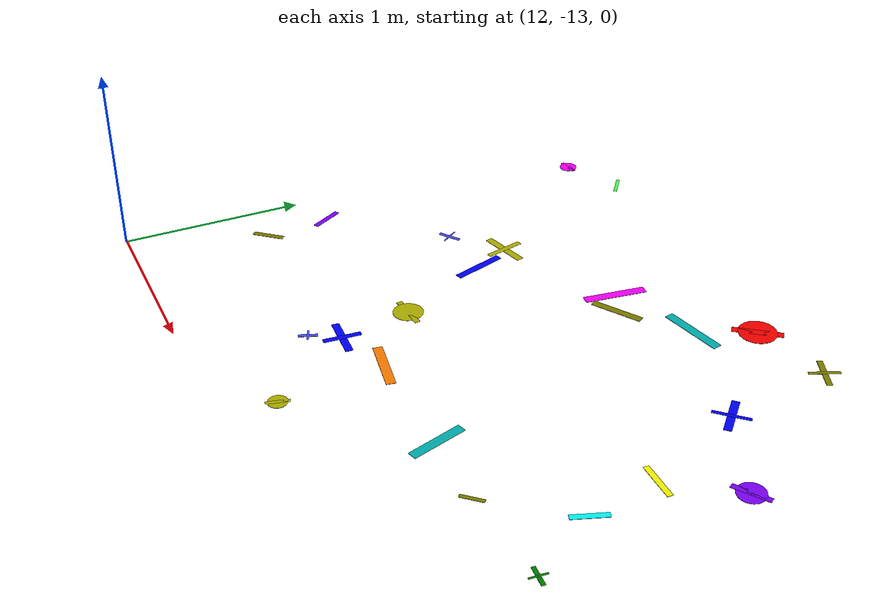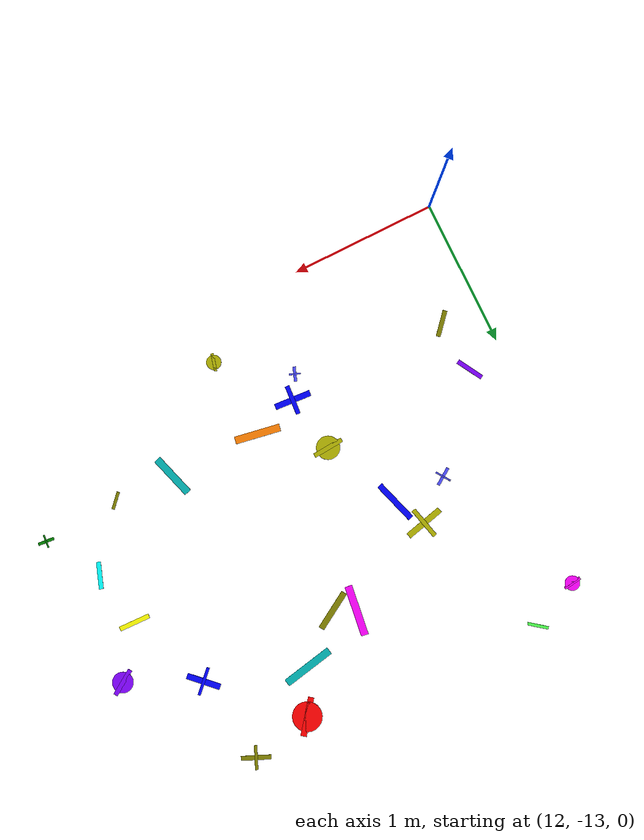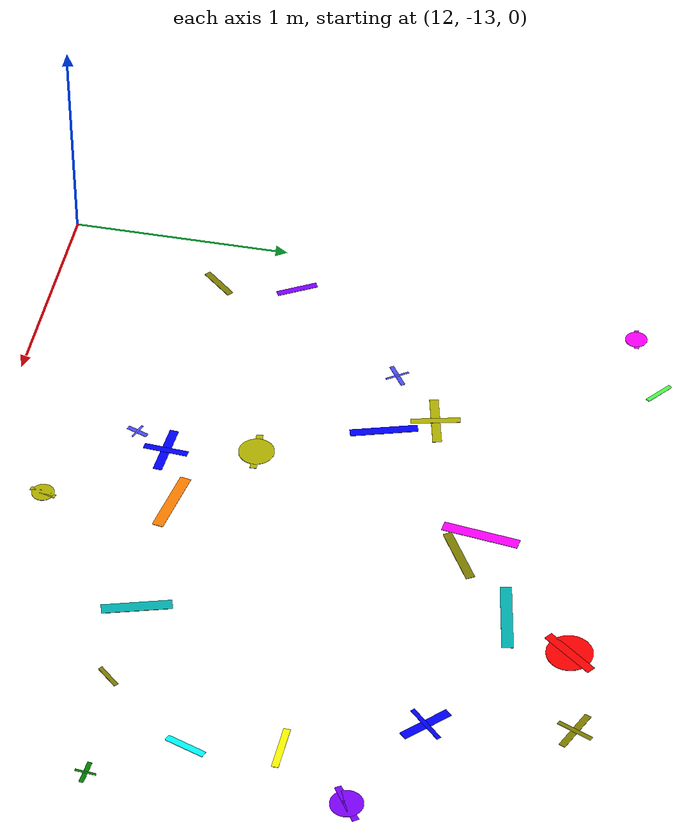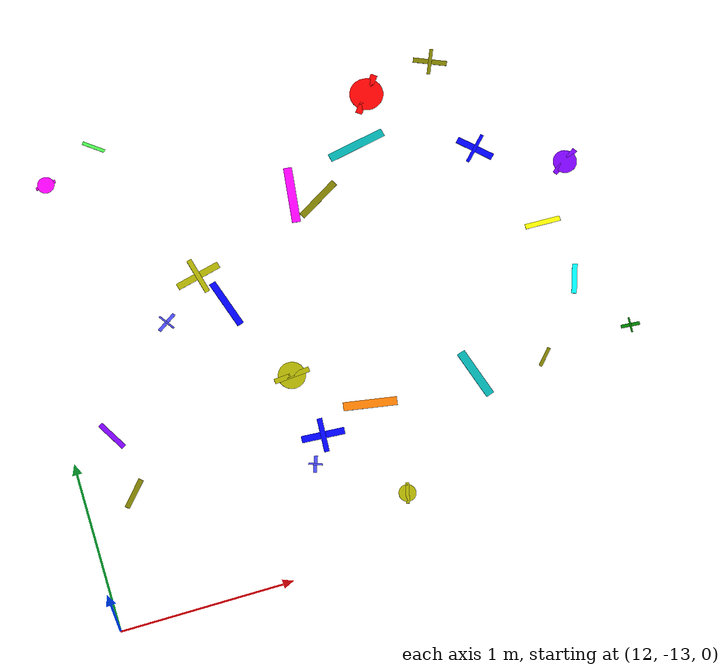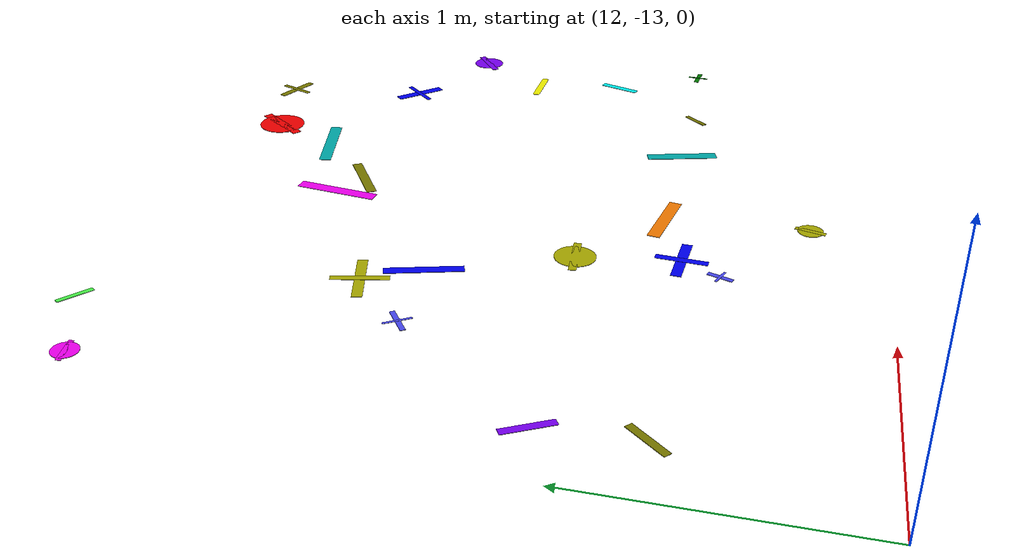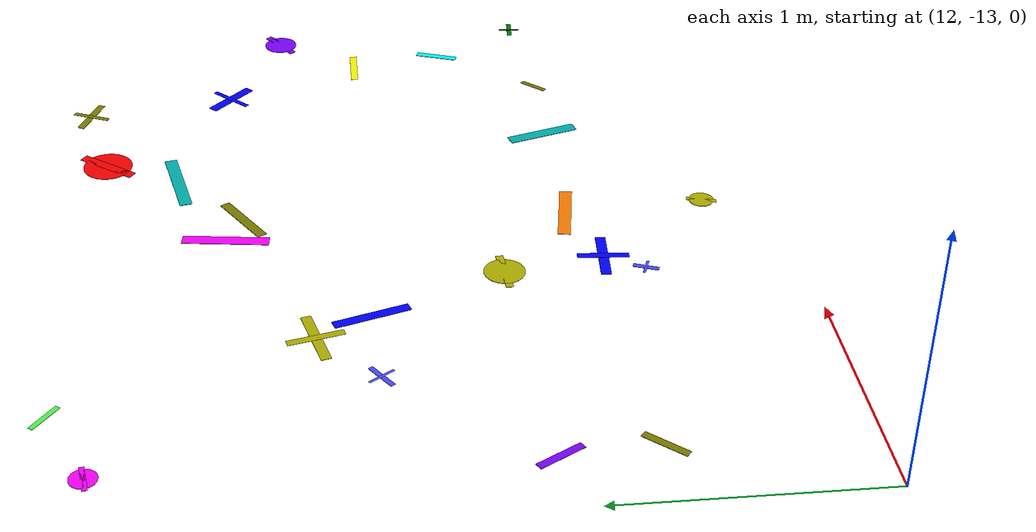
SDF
<sdf version="1.6">
 <world name="default">
  <model name="letter_N_2013">
   <static>true</static>
   <pose>12.25 -11.90 0.009 0 0 2.095</pose>
   <link name="link">
    <visual name="visual">
     <geometry><box><size>0.19 0.03 0.002</size></box></geometry>
     <material>
      <ambient>0.5 0.0 1.0 1</ambient>
      <diffuse>0.5 0.0 1.0 1</diffuse>
      <specular>0.1 0.1 0.1 1</specular>
     </material>
    </visual>
   </link>
  </model>
  <model name="letter_N_2014">
   <static>true</static>
   <pose>12.28 -12.26 0.006 0 0 0.849</pose>
   <link name="link">
    <visual name="visual">
     <geometry><box><size>0.18 0.03 0.002</size></box></geometry>
     <material>
      <ambient>0.5 0.5 0.0 1</ambient>
      <diffuse>0.5 0.5 0.0 1</diffuse>
      <specular>0.1 0.1 0.1 1</specular>
     </material>
    </visual>
   </link>
  </model>
  <model name="letter_C_2019">
   <static>true</static>
   <pose>12.28 -10.33 0.012 0 0 0.141</pose>
   <link name="link">
    <visual name="visual">
     <geometry><box><size>0.12 0.02 0.002</size></box></geometry>
     <material>
      <ambient>1.0 0.0 1.0 1</ambient>
      <diffuse>1.0 0.0 1.0 1</diffuse>
      <specular>0.1 0.1 0.1 1</specular>
     </material>
    </visual>
    <visual name="visual2">
     <geometry><cylinder><radius>0.05</radius><length>0.002</length></cylinder></geometry>
     <material><ambient>1.0 0.0 1.0 1</ambient><diffuse>1.0 0.0 1.0 1</diffuse></material>
    </visual>
   </link>
  </model>
  <model name="letter_C_2091">
   <static>true</static>
   <pose>13.33 -11.85 0.009 0 0 3.217</pose>
   <link name="link">
    <visual name="visual">
     <geometry><box><size>0.21 0.03 0.002</size></box></geometry>
     <material>
      <ambient>0.7 0.7 0.0 1</ambient>
      <diffuse>0.7 0.7 0.0 1</diffuse>
      <specular>0.1 0.1 0.1 1</specular>
     </material>
    </visual>
    <visual name="visual2">
     <geometry><cylinder><radius>0.08</radius><length>0.002</length></cylinder></geometry>
     <material><ambient>0.7 0.7 0.0 1</ambient><diffuse>0.7 0.7 0.0 1</diffuse></material>
    </visual>
   </link>
  </model>
  <model name="letter_F_2092">
   <static>true</static>
   <pose>13.31 -12.39 0.008 0 0 1.213</pose>
   <link name="link">
    <visual name="visual">
     <geometry><box><size>0.10 0.02 0.002</size></box></geometry>
     <material>
      <ambient>0.3 0.3 1.0 1</ambient>
      <diffuse>0.3 0.3 1.0 1</diffuse>
      <specular>0.1 0.1 0.1 1</specular>
     </material>
    </visual>
    <visual name="visual2">
     <pose>0 0 0.001 0 0 1.57</pose>
     <geometry><box><size>0.08 0.01 0.001</size></box></geometry>
     <material><ambient>0.3 0.3 1.0 1</ambient><diffuse>0.3 0.3 1.0 1</diffuse></material>
    </visual>
   </link>
  </model>
  <model name="letter_T_2093">
   <static>true</static>
   <pose>13.40 -12.24 0.009 0 0 6.214</pose>
   <link name="link">
    <visual name="visual">
     <geometry><box><size>0.25 0.04 0.002</size></box></geometry>
     <material>
      <ambient>0.0 0.0 1.0 1</ambient>
      <diffuse>0.0 0.0 1.0 1</diffuse>
      <specular>0.1 0.1 0.1 1</specular>
     </material>
    </visual>
    <visual name="visual2">
     <pose>0 0 0.001 0 0 1.57</pose>
     <geometry><box><size>0.20 0.03 0.001</size></box></geometry>
     <material><ambient>0.0 0.0 1.0 1</ambient><diffuse>0.0 0.0 1.0 1</diffuse></material>
    </visual>
   </link>
  </model>
  <model name="letter_H_2094">
   <static>true</static>
   <pose>12.73 -11.34 0.010 0 0 0.595</pose>
   <link name="link">
    <visual name="visual">
     <geometry><box><size>0.13 0.02 0.002</size></box></geometry>
     <material>
      <ambient>0.3 0.3 1.0 1</ambient>
      <diffuse>0.3 0.3 1.0 1</diffuse>
      <specular>0.1 0.1 0.1 1</specular>
     </material>
    </visual>
    <visual name="visual2">
     <pose>0 0 0.001 0 0 1.57</pose>
     <geometry><box><size>0.11 0.01 0.001</size></box></geometry>
     <material><ambient>0.3 0.3 1.0 1</ambient><diffuse>0.3 0.3 1.0 1</diffuse></material>
    </visual>
   </link>
  </model>
  <model name="letter_I_2095">
   <static>true</static>
   <pose>12.98 -11.12 0.008 0 0 3.380</pose>
   <link name="link">
    <visual name="visual">
     <geometry><box><size>0.27 0.04 0.002</size></box></geometry>
     <material>
      <ambient>0.7 0.7 0.0 1</ambient>
      <diffuse>0.7 0.7 0.0 1</diffuse>
      <specular>0.1 0.1 0.1 1</specular>
     </material>
    </visual>
    <visual name="visual2">
     <pose>0 0 0.001 0 0 1.57</pose>
     <geometry><box><size>0.22 0.03 0.001</size></box></geometry>
     <material><ambient>0.7 0.7 0.0 1</ambient><diffuse>0.7 0.7 0.0 1</diffuse></material>
    </visual>
   </link>
  </model>
  <model name="letter_K_2096">
   <static>true</static>
   <pose>13.09 -11.33 0.011 0 0 1.873</pose>
   <link name="link">
    <visual name="visual">
     <geometry><box><size>0.30 0.04 0.002</size></box></geometry>
     <material>
      <ambient>0.0 0.0 1.0 1</ambient>
      <diffuse>0.0 0.0 1.0 1</diffuse>
      <specular>0.1 0.1 0.1 1</specular>
     </material>
    </visual>
   </link>
  </model>
  <model name="letter_P_2097">
   <static>true</static>
   <pose>12.61 -10.18 0.011 0 0 5.623</pose>
   <link name="link">
    <visual name="visual">
     <geometry><box><size>0.14 0.02 0.002</size></box></geometry>
     <material>
      <ambient>0.3 1.0 0.3 1</ambient>
      <diffuse>0.3 1.0 0.3 1</diffuse>
      <specular>0.1 0.1 0.1 1</specular>
     </material>
    </visual>
   </link>
  </model>
  <model name="letter_Q_2168">
   <static>true</static>
   <pose>13.76 -12.70 0.006 0 0 1.310</pose>
   <link name="link">
    <visual name="visual">
     <geometry><box><size>0.12 0.02 0.002</size></box></geometry>
     <material>
      <ambient>0.7 0.7 0.0 1</ambient>
      <diffuse>0.7 0.7 0.0 1</diffuse>
      <specular>0.1 0.1 0.1 1</specular>
     </material>
    </visual>
    <visual name="visual2">
     <geometry><cylinder><radius>0.05</radius><length>0.002</length></cylinder></geometry>
     <material><ambient>0.7 0.7 0.0 1</ambient><diffuse>0.7 0.7 0.0 1</diffuse></material>
    </visual>
   </link>
  </model>
  <model name="letter_S_2170">
   <static>true</static>
   <pose>14.34 -12.14 0.004 0 0 1.865</pose>
   <link name="link">
    <visual name="visual">
     <geometry><box><size>0.30 0.05 0.002</size></box></geometry>
     <material>
      <ambient>0.0 0.7 0.7 1</ambient>
      <diffuse>0.0 0.7 0.7 1</diffuse>
      <specular>0.1 0.1 0.1 1</specular>
     </material>
    </visual>
   </link>
  </model>
  <model name="letter_N_2171">
   <static>true</static>
   <pose>13.71 -12.14 0.011 0 0 2.971</pose>
   <link name="link">
    <visual name="visual">
     <geometry><box><size>0.31 0.05 0.002</size></box></geometry>
     <material>
      <ambient>1.0 0.5 0.0 1</ambient>
      <diffuse>1.0 0.5 0.0 1</diffuse>
      <specular>0.1 0.1 0.1 1</specular>
     </material>
    </visual>
   </link>
  </model>
  <model name="letter_Z_2172">
   <static>true</static>
   <pose>13.78 -10.87 0.011 0 0 3.683</pose>
   <link name="link">
    <visual name="visual">
     <geometry><box><size>0.28 0.04 0.002</size></box></geometry>
     <material>
      <ambient>0.5 0.5 0.0 1</ambient>
      <diffuse>0.5 0.5 0.0 1</diffuse>
      <specular>0.1 0.1 0.1 1</specular>
     </material>
    </visual>
   </link>
  </model>
  <model name="letter_N_2173">
   <static>true</static>
   <pose>14.09 -10.61 0.006 0 0 0.194</pose>
   <link name="link">
    <visual name="visual">
     <geometry><box><size>0.35 0.05 0.002</size></box></geometry>
     <material>
      <ambient>0.0 0.7 0.7 1</ambient>
      <diffuse>0.0 0.7 0.7 1</diffuse>
      <specular>0.1 0.1 0.1 1</specular>
     </material>
    </visual>
   </link>
  </model>
  <model name="letter_S_2174">
   <static>true</static>
   <pose>13.64 -10.80 0.010 0 0 4.581</pose>
   <link name="link">
    <visual name="visual">
     <geometry><box><size>0.34 0.05 0.002</size></box></geometry>
     <material>
      <ambient>1.0 0.0 1.0 1</ambient>
      <diffuse>1.0 0.0 1.0 1</diffuse>
      <specular>0.1 0.1 0.1 1</specular>
     </material>
    </visual>
   </link>
  </model>
  <model name="letter_G_2175">
   <static>true</static>
   <pose>14.24 -10.32 0.007 0 0 0.917</pose>
   <link name="link">
    <visual name="visual">
     <geometry><box><size>0.26 0.04 0.002</size></box></geometry>
     <material>
      <ambient>1.0 0.0 0.0 1</ambient>
      <diffuse>1.0 0.0 0.0 1</diffuse>
      <specular>0.1 0.1 0.1 1</specular>
     </material>
    </visual>
    <visual name="visual2">
     <geometry><cylinder><radius>0.10</radius><length>0.002</length></cylinder></geometry>
     <material><ambient>1.0 0.0 0.0 1</ambient><diffuse>1.0 0.0 0.0 1</diffuse></material>
    </visual>
   </link>
  </model>
  <model name="letter_N_2249">
   <static>true</static>
   <pose>14.75 -12.16 0.005 0 0 0.829</pose>
   <link name="link">
    <visual name="visual">
     <geometry><box><size>0.12 0.02 0.002</size></box></geometry>
     <material>
      <ambient>0.5 0.5 0.0 1</ambient>
      <diffuse>0.5 0.5 0.0 1</diffuse>
      <specular>0.1 0.1 0.1 1</specular>
     </material>
    </visual>
   </link>
  </model>
  <model name="letter_N_2250">
   <static>true</static>
   <pose>15.06 -11.76 0.008 0 0 1.229</pose>
   <link name="link">
    <visual name="visual">
     <geometry><box><size>0.18 0.03 0.002</size></box></geometry>
     <material>
      <ambient>0.0 1.0 1.0 1</ambient>
      <diffuse>0.0 1.0 1.0 1</diffuse>
      <specular>0.1 0.1 0.1 1</specular>
     </material>
    </visual>
   </link>
  </model>
  <model name="letter_T_2251">
   <static>true</static>
   <pose>15.28 -12.12 0.011 0 0 6.197</pose>
   <link name="link">
    <visual name="visual">
     <geometry><box><size>0.11 0.02 0.002</size></box></geometry>
     <material>
      <ambient>0.0 0.5 0.0 1</ambient>
      <diffuse>0.0 0.5 0.0 1</diffuse>
      <specular>0.1 0.1 0.1 1</specular>
     </material>
    </visual>
    <visual name="visual2">
     <pose>0 0 0.001 0 0 1.57</pose>
     <geometry><box><size>0.09 0.01 0.001</size></box></geometry>
     <material><ambient>0.0 0.5 0.0 1</ambient><diffuse>0.0 0.5 0.0 1</diffuse></material>
    </visual>
   </link>
  </model>
  <model name="letter_G_2252">
   <static>true</static>
   <pose>15.23 -11.06 0.010 0 0 3.729</pose>
   <link name="link">
    <visual name="visual">
     <geometry><box><size>0.19 0.03 0.002</size></box></geometry>
     <material>
      <ambient>0.5 0.0 1.0 1</ambient>
      <diffuse>0.5 0.0 1.0 1</diffuse>
      <specular>0.1 0.1 0.1 1</specular>
     </material>
    </visual>
    <visual name="visual2">
     <geometry><cylinder><radius>0.07</radius><length>0.002</length></cylinder></geometry>
     <material><ambient>0.5 0.0 1.0 1</ambient><diffuse>0.5 0.0 1.0 1</diffuse></material>
    </visual>
   </link>
  </model>
  <model name="letter_X_2253">
   <static>true</static>
   <pose>14.99 -11.38 0.005 0 0 3.113</pose>
   <link name="link">
    <visual name="visual">
     <geometry><box><size>0.21 0.03 0.002</size></box></geometry>
     <material>
      <ambient>1.0 1.0 0.0 1</ambient>
      <diffuse>1.0 1.0 0.0 1</diffuse>
      <specular>0.1 0.1 0.1 1</specular>
     </material>
    </visual>
   </link>
  </model>
  <model name="letter_E_2254">
   <static>true</static>
   <pose>14.75 -10.83 0.009 0 0 2.367</pose>
   <link name="link">
    <visual name="visual">
     <geometry><box><size>0.23 0.04 0.002</size></box></geometry>
     <material>
      <ambient>0.0 0.0 1.0 1</ambient>
      <diffuse>0.0 0.0 1.0 1</diffuse>
      <specular>0.1 0.1 0.1 1</specular>
     </material>
    </visual>
    <visual name="visual2">
     <pose>0 0 0.001 0 0 1.57</pose>
     <geometry><box><size>0.19 0.02 0.001</size></box></geometry>
     <material><ambient>0.0 0.0 1.0 1</ambient><diffuse>0.0 0.0 1.0 1</diffuse></material>
    </visual>
   </link>
  </model>
  <model name="letter_T_2257">
   <static>true</static>
   <pose>14.66 -10.23 0.006 0 0 5.876</pose>
   <link name="link">
    <visual name="visual">
     <geometry><box><size>0.20 0.03 0.002</size></box></geometry>
     <material>
      <ambient>0.5 0.5 0.0 1</ambient>
      <diffuse>0.5 0.5 0.0 1</diffuse>
      <specular>0.1 0.1 0.1 1</specular>
     </material>
    </visual>
    <visual name="visual2">
     <pose>0 0 0.001 0 0 1.57</pose>
     <geometry><box><size>0.16 0.02 0.001</size></box></geometry>
     <material><ambient>0.5 0.5 0.0 1</ambient><diffuse>0.5 0.5 0.0 1</diffuse></material>
    </visual>
   </link>
  </model>
 </world>
</sdf>
